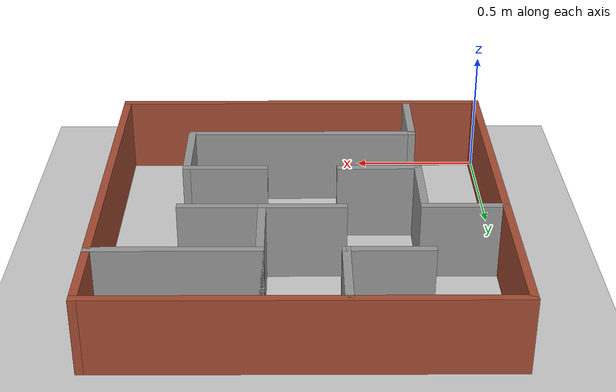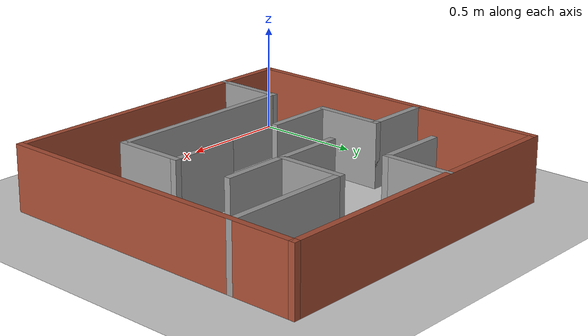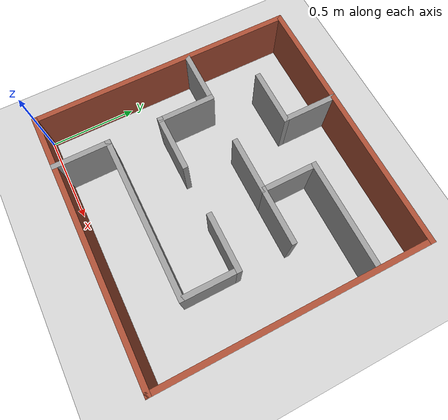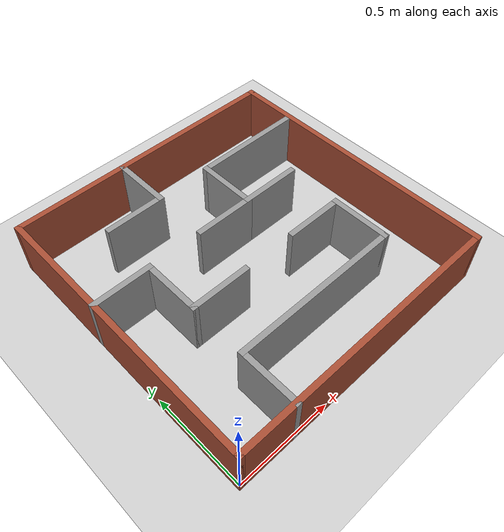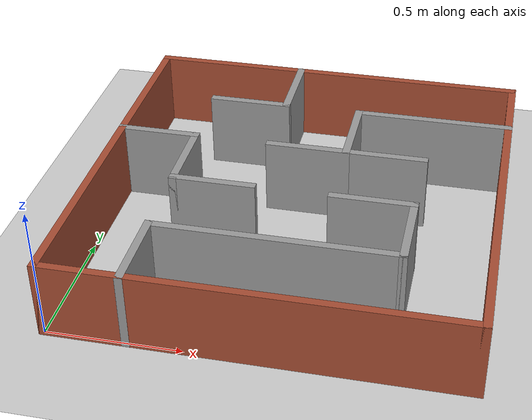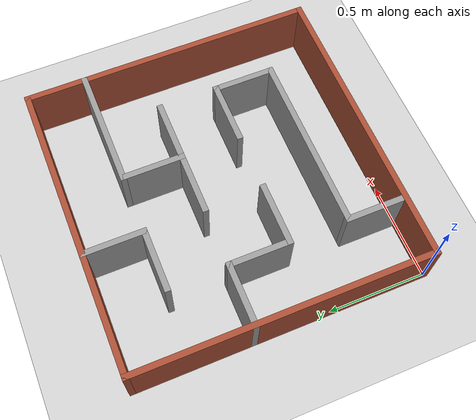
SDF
<sdf version="1.7">
 <world name="default">
  <light name="sun" type="directional">
   <pose>0 0 10 0 -0 0</pose>
   <diffuse>0.8 0.8 0.8 1</diffuse>
   <specular>0.2 0.2 0.2 1</specular>
   <attenuation>
    <range>1000</range>
    <constant>0.9</constant>
    <linear>0.01</linear>
    <quadratic>0.001</quadratic>
   </attenuation>
   <direction>-0.5 0.1 -0.9</direction>
   <spot><inner_angle>0</inner_angle><outer_angle>0</outer_angle><falloff>0</falloff></spot>
  </light>
  <model name="ground_plane">
   <static>1</static>
   <link name="link">
    <collision name="collision">
     <geometry><plane><normal>0 0 1</normal><size>100 100</size></plane></geometry>
     <surface><friction><ode><mu>100</mu><mu2>50</mu2></ode></friction></surface>
    </collision>
    <visual name="visual">
     <cast_shadows>0</cast_shadows>
     <geometry><plane><normal>0 0 1</normal><size>100 100</size></plane></geometry>
     <material>
      <script><uri>file://media/materials/scripts/gazebo.material</uri><name>Gazebo/Grey</name></script>
     </material>
    </visual>
   </link>
  </model>
  <gravity>0 0 -9.8</gravity>
  <magnetic_field>6e-06 2.3e-05 -4.2e-05</magnetic_field>
  <atmosphere type="adiabatic"/>
  <physics type="ode">
   <max_step_size>0.001</max_step_size>
   <real_time_factor>1</real_time_factor>
   <real_time_update_rate>1000</real_time_update_rate>
  </physics>
  <scene><ambient>0.4 0.4 0.4 1</ambient><background>0.7 0.7 0.7 1</background><shadows>1</shadows></scene>
  <audio><device>default</device></audio>
  <spherical_coordinates>
   <surface_model>EARTH_WGS84</surface_model>
   <latitude_deg>0</latitude_deg>
   <longitude_deg>0</longitude_deg>
   <elevation>0</elevation>
   <heading_deg>0</heading_deg>
  </spherical_coordinates>
  <model name="maze_world.world">
   <pose>0.75 0.749935 0 0 -0 0</pose>
   <link name="Wall_20">
    <collision name="Wall_20_Collision">
     <geometry><box><size>1.53 0.03 0.3</size></box></geometry>
     <pose>0 0 0.15 0 -0 0</pose>
    </collision>
    <visual name="Wall_20_Visual">
     <pose>0 0 0.15 0 -0 0</pose>
     <geometry><box><size>1.53 0.03 0.3</size></box></geometry>
     <material>
      <script><uri>file://media/materials/scripts/gazebo.material</uri><name>Gazebo/Bricks</name></script>
      <ambient>1 1 1 1</ambient>
     </material>
     <meta><layer>0</layer></meta>
    </visual>
    <pose>-0 -0.749935 0 0 -0 0</pose>
   </link>
   <link name="Wall_21">
    <collision name="Wall_21_Collision">
     <geometry><box><size>1.53 0.03 0.3</size></box></geometry>
     <pose>0 0 0.15 0 -0 0</pose>
    </collision>
    <visual name="Wall_21_Visual">
     <pose>0 0 0.15 0 -0 0</pose>
     <geometry><box><size>1.53 0.03 0.3</size></box></geometry>
     <material>
      <script><uri>file://media/materials/scripts/gazebo.material</uri><name>Gazebo/Bricks</name></script>
      <ambient>1 1 1 1</ambient>
     </material>
     <meta><layer>0</layer></meta>
    </visual>
    <pose>0.75 6.5e-05 0 0 -0 1.5708</pose>
   </link>
   <link name="Wall_22">
    <collision name="Wall_22_Collision">
     <geometry><box><size>1.53 0.03 0.3</size></box></geometry>
     <pose>0 0 0.15 0 -0 0</pose>
    </collision>
    <visual name="Wall_22_Visual">
     <pose>0 0 0.15 0 -0 0</pose>
     <geometry><box><size>1.53 0.03 0.3</size></box></geometry>
     <material>
      <script><uri>file://media/materials/scripts/gazebo.material</uri><name>Gazebo/Bricks</name></script>
      <ambient>1 1 1 1</ambient>
     </material>
     <meta><layer>0</layer></meta>
    </visual>
    <pose>-0 0.750065 0 0 -0 3.14159</pose>
   </link>
   <link name="Wall_23">
    <collision name="Wall_23_Collision">
     <geometry><box><size>1.53 0.03 0.3</size></box></geometry>
     <pose>0 0 0.15 0 -0 0</pose>
    </collision>
    <visual name="Wall_23_Visual">
     <pose>0 0 0.15 0 -0 0</pose>
     <geometry><box><size>1.53 0.03 0.3</size></box></geometry>
     <material>
      <script><uri>file://media/materials/scripts/gazebo.material</uri><name>Gazebo/Bricks</name></script>
      <ambient>1 1 1 1</ambient>
     </material>
     <meta><layer>0</layer></meta>
    </visual>
    <pose>-0.75 6.5e-05 0 0 -0 -1.5708</pose>
   </link>
   <link name="Wall_25">
    <collision name="Wall_25_Collision">
     <geometry><box><size>0.33026 0.03 0.3</size></box></geometry>
     <pose>0 0 0.15 0 -0 0</pose>
    </collision>
    <visual name="Wall_25_Visual">
     <pose>0 0 0.15 0 -0 0</pose>
     <geometry><box><size>0.33026 0.03 0.3</size></box></geometry>
     <material>
      <script><uri>file://media/materials/scripts/gazebo.material</uri><name>Gazebo/Grey</name></script>
      <ambient>1 1 1 1</ambient>
     </material>
     <meta><layer>0</layer></meta>
    </visual>
    <pose>-0.45 -0.599935 0 0 -0 1.5708</pose>
   </link>
   <link name="Wall_26">
    <collision name="Wall_26_Collision">
     <geometry><box><size>0.93 0.03 0.3</size></box></geometry>
     <pose>0 0 0.15 0 -0 0</pose>
    </collision>
    <visual name="Wall_26_Visual">
     <pose>0 0 0.15 0 -0 0</pose>
     <geometry><box><size>0.93 0.03 0.3</size></box></geometry>
     <material>
      <script><uri>file://media/materials/scripts/gazebo.material</uri><name>Gazebo/Grey</name></script>
      <ambient>1 1 1 1</ambient>
     </material>
     <meta><layer>0</layer></meta>
    </visual>
    <pose>-0 -0.449935 0 0 -0 0</pose>
   </link>
   <link name="Wall_30">
    <collision name="Wall_30_Collision">
     <geometry><box><size>0.33 0.03 0.3</size></box></geometry>
     <pose>0 0 0.15 0 -0 0</pose>
    </collision>
    <visual name="Wall_30_Visual">
     <pose>0 0 0.15 0 -0 0</pose>
     <geometry><box><size>0.33 0.03 0.3</size></box></geometry>
     <material>
      <script><uri>file://media/materials/scripts/gazebo.material</uri><name>Gazebo/Grey</name></script>
      <ambient>1 1 1 1</ambient>
     </material>
     <meta><layer>0</layer></meta>
    </visual>
    <pose>-0.6 0.150065 0 0 -0 0</pose>
   </link>
   <link name="Wall_32">
    <collision name="Wall_32_Collision">
     <geometry><box><size>0.33 0.03 0.3</size></box></geometry>
     <pose>0 0 0.15 0 -0 0</pose>
    </collision>
    <visual name="Wall_32_Visual">
     <pose>0 0 0.15 0 -0 0</pose>
     <geometry><box><size>0.33 0.03 0.3</size></box></geometry>
     <material>
      <script><uri>file://media/materials/scripts/gazebo.material</uri><name>Gazebo/Grey</name></script>
      <ambient>1 1 1 1</ambient>
     </material>
     <meta><layer>0</layer></meta>
    </visual>
    <pose>-0.45 6.5e-05 0 0 -0 -1.5708</pose>
   </link>
   <link name="Wall_35">
    <collision name="Wall_35_Collision">
     <geometry><box><size>0.63 0.03 0.3</size></box></geometry>
     <pose>0 0 0.15 0 -0 0</pose>
    </collision>
    <visual name="Wall_35_Visual">
     <pose>0 0 0.15 0 -0 0</pose>
     <geometry><box><size>0.63 0.03 0.3</size></box></geometry>
     <material>
      <script><uri>file://media/materials/scripts/gazebo.material</uri><name>Gazebo/Grey</name></script>
      <ambient>1 1 1 1</ambient>
     </material>
     <meta><layer>0</layer></meta>
    </visual>
    <pose>0.45 0.450065 0 0 -0 0</pose>
   </link>
   <link name="Wall_37">
    <collision name="Wall_37_Collision">
     <geometry><box><size>0.33 0.03 0.3</size></box></geometry>
     <pose>0 0 0.15 0 -0 0</pose>
    </collision>
    <visual name="Wall_37_Visual">
     <pose>0 0 0.15 0 -0 0</pose>
     <geometry><box><size>0.33 0.03 0.3</size></box></geometry>
     <material>
      <script><uri>file://media/materials/scripts/gazebo.material</uri><name>Gazebo/Grey</name></script>
      <ambient>1 1 1 1</ambient>
     </material>
     <meta><layer>0</layer></meta>
    </visual>
    <pose>-0.3 -0.149935 0 0 -0 0</pose>
   </link>
   <link name="Wall_41">
    <collision name="Wall_41_Collision">
     <geometry><box><size>0.33 0.03 0.3</size></box></geometry>
     <pose>0 0 0.15 0 -0 0</pose>
    </collision>
    <visual name="Wall_41_Visual">
     <pose>0 0 0.15 0 -0 0</pose>
     <geometry><box><size>0.33 0.03 0.3</size></box></geometry>
     <material>
      <script><uri>file://media/materials/scripts/gazebo.material</uri><name>Gazebo/Grey</name></script>
      <ambient>1 1 1 1</ambient>
     </material>
     <meta><layer>0</layer></meta>
    </visual>
    <pose>0.45 -0.299935 0 0 -0 1.5708</pose>
   </link>
   <link name="Wall_43">
    <collision name="Wall_43_Collision">
     <geometry><box><size>0.33 0.03 0.3</size></box></geometry>
     <pose>0 0 0.15 0 -0 0</pose>
    </collision>
    <visual name="Wall_43_Visual">
     <pose>0 0 0.15 0 -0 0</pose>
     <geometry><box><size>0.33 0.03 0.3</size></box></geometry>
     <material>
      <script><uri>file://media/materials/scripts/gazebo.material</uri><name>Gazebo/Grey</name></script>
      <ambient>1 1 1 1</ambient>
     </material>
     <meta><layer>0</layer></meta>
    </visual>
    <pose>-0.15 0.600065 0 0 -0 -1.5708</pose>
   </link>
   <link name="Wall_44">
    <collision name="Wall_44_Collision">
     <geometry><box><size>0.33 0.03 0.3</size></box></geometry>
     <pose>0 0 0.15 0 -0 0</pose>
    </collision>
    <visual name="Wall_44_Visual">
     <pose>0 0 0.15 0 -0 0</pose>
     <geometry><box><size>0.33 0.03 0.3</size></box></geometry>
     <material>
      <script><uri>file://media/materials/scripts/gazebo.material</uri><name>Gazebo/Grey</name></script>
      <ambient>1 1 1 1</ambient>
     </material>
     <meta><layer>0</layer></meta>
    </visual>
    <pose>-0.3 0.450065 0 0 -0 3.14159</pose>
   </link>
   <link name="Wall_46">
    <collision name="Wall_46_Collision">
     <geometry><box><size>0.33 0.03 0.3</size></box></geometry>
     <pose>0 0 0.15 0 -0 0</pose>
    </collision>
    <visual name="Wall_46_Visual">
     <pose>0 0 0.15 0 -0 0</pose>
     <geometry><box><size>0.33 0.03 0.3</size></box></geometry>
     <material>
      <script><uri>file://media/materials/scripts/gazebo.material</uri><name>Gazebo/Grey</name></script>
      <ambient>1 1 1 1</ambient>
     </material>
     <meta><layer>0</layer></meta>
    </visual>
    <pose>0.15 0.300065 0 0 -0 -1.5708</pose>
   </link>
   <link name="Wall_47">
    <collision name="Wall_47_Collision">
     <geometry><box><size>0.33 0.03 0.3</size></box></geometry>
     <pose>0 0 0.15 0 -0 0</pose>
    </collision>
    <visual name="Wall_47_Visual">
     <pose>0 0 0.15 0 -0 0</pose>
     <geometry><box><size>0.33 0.03 0.3</size></box></geometry>
     <material>
      <script><uri>file://media/materials/scripts/gazebo.material</uri><name>Gazebo/Grey</name></script>
      <ambient>1 1 1 1</ambient>
     </material>
     <meta><layer>0</layer></meta>
    </visual>
    <pose>-0 0.150065 0 0 -0 3.14159</pose>
   </link>
   <link name="Wall_49">
    <collision name="Wall_49_Collision">
     <geometry><box><size>0.33 0.03 0.3</size></box></geometry>
     <pose>0 0 0.15 0 -0 0</pose>
    </collision>
    <visual name="Wall_49_Visual">
     <pose>0 0 0.15 0 -0 0</pose>
     <geometry><box><size>0.33 0.03 0.3</size></box></geometry>
     <material>
      <script><uri>file://media/materials/scripts/gazebo.material</uri><name>Gazebo/Grey</name></script>
      <ambient>1 1 1 1</ambient>
     </material>
     <meta><layer>0</layer></meta>
    </visual>
    <pose>0.3 0.150065 0 0 -0 0</pose>
   </link>
   <link name="Wall_51">
    <collision name="Wall_51_Collision">
     <geometry><box><size>0.33 0.03 0.3</size></box></geometry>
     <pose>0 0 0.15 0 -0 0</pose>
    </collision>
    <visual name="Wall_51_Visual">
     <pose>0 0 0.15 0 -0 0</pose>
     <geometry><box><size>0.33 0.03 0.3</size></box></geometry>
     <material>
      <script><uri>file://media/materials/scripts/gazebo.material</uri><name>Gazebo/Grey</name></script>
      <ambient>1 1 1 1</ambient>
     </material>
     <meta><layer>0</layer></meta>
    </visual>
    <pose>0.3 -0.149935 0 0 -0 3.14159</pose>
   </link>
   <static>1</static>
  </model>
 </world>
</sdf>
